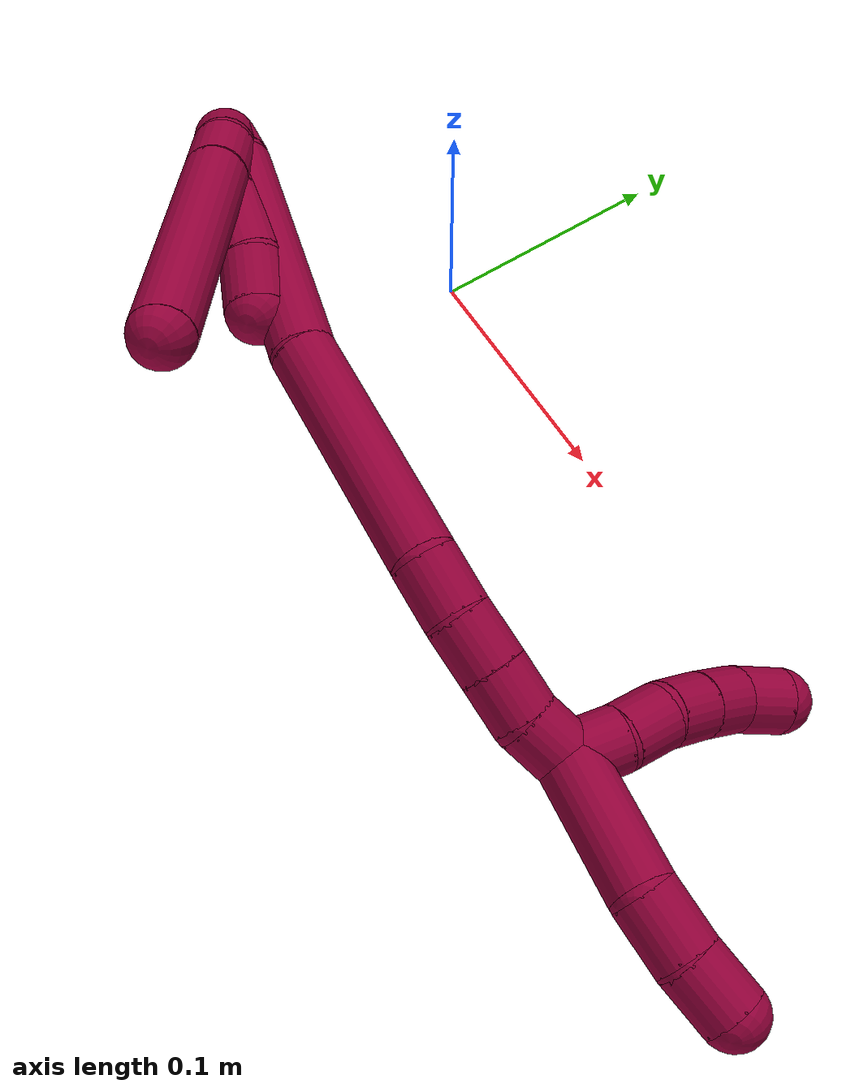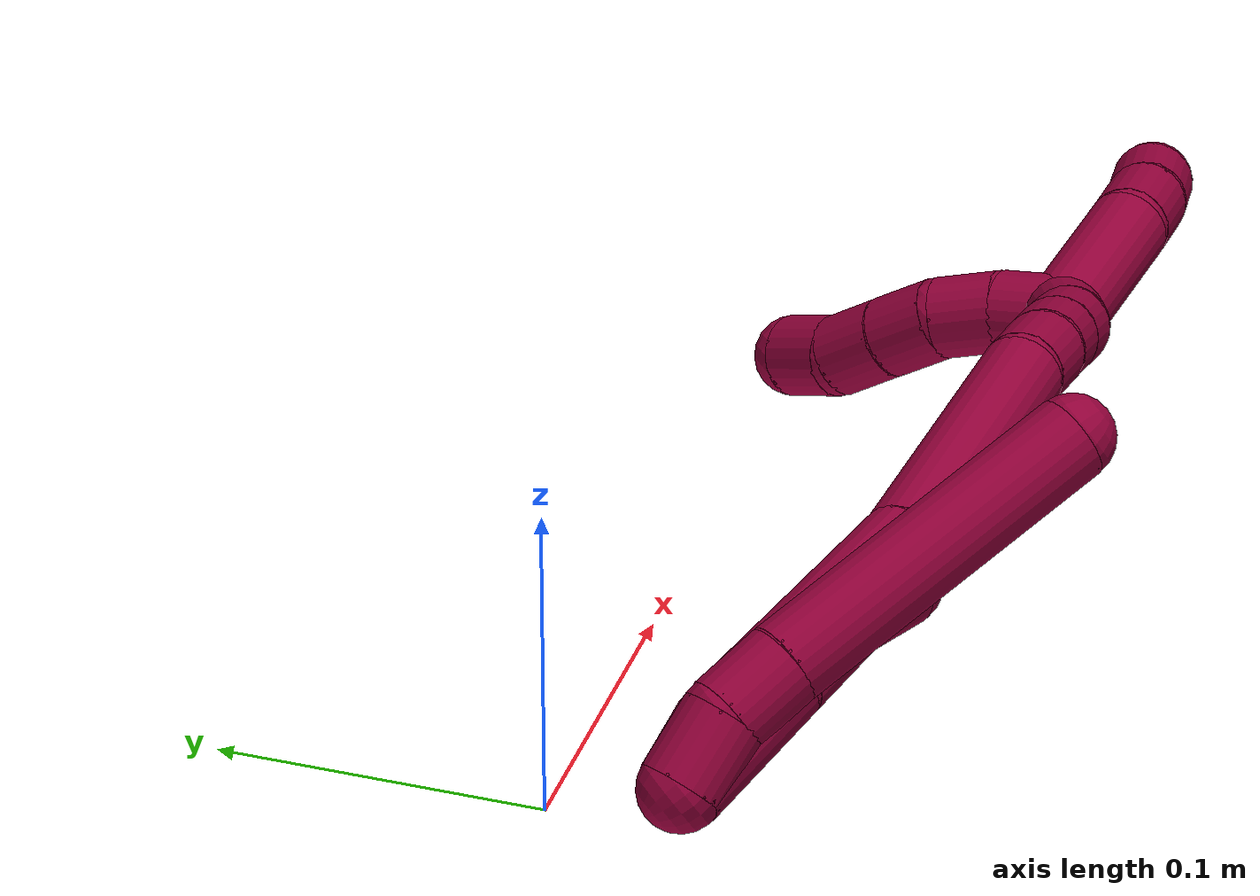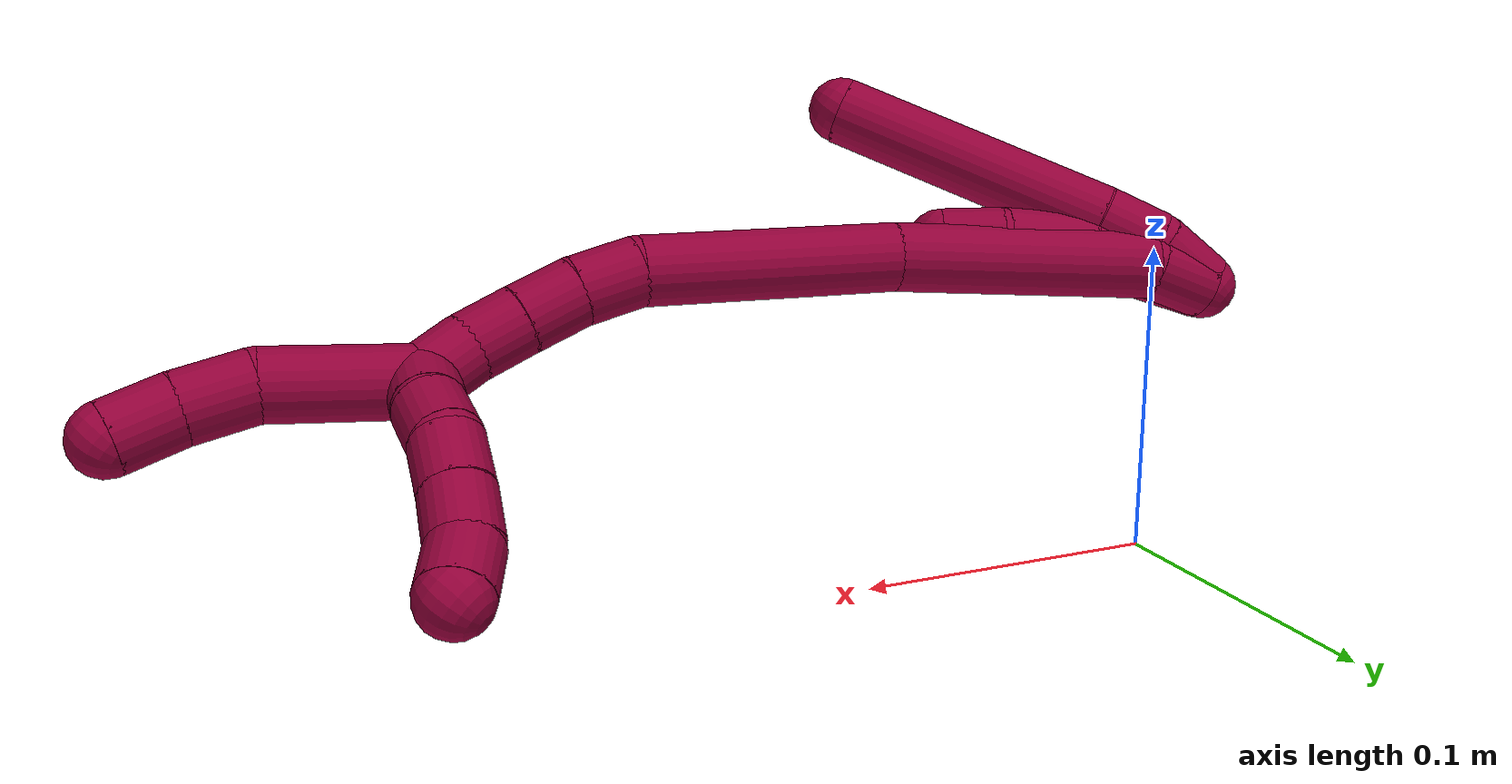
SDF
<sdf version="1.7">
 <world name="default">
  <model name="8">
   <static>0</static>
   <link name="8">
    <collision name="collision-cylinder-e_1_2_8">
     <pose>0.002917 0.002862 0.010736 -0.260557 0.256756 -0.033823</pose>
     <geometry><cylinder><radius>0.0125</radius><length>0.022975</length></cylinder></geometry>
     <surface>
      <friction><ode><mu>1.16</mu><mu2>1.16</mu2><slip1>0</slip1><slip2>0</slip2></ode></friction>
      <contact><ode><kp>1e+06</kp><kd>1</kd><max_vel>0</max_vel><min_depth>0.001</min_depth></ode></contact>
     </surface>
    </collision>
    <visual name="visual-cylinder-e_1_2_8">
     <pose>0.002917 0.002862 0.010736 -0.260557 0.256756 -0.033823</pose>
     <geometry><cylinder><radius>0.0125</radius><length>0.022975</length></cylinder></geometry>
     <material><ambient>0.584314 0 0.227451 1</ambient></material>
    </visual>
    <collision name="collision-cylinder-e_2_8_9">
     <pose>0.008436 0.005027 0.032216 0.064844 0.237075 0.007725</pose>
     <geometry><cylinder><radius>0.0125</radius><length>0.022152</length></cylinder></geometry>
     <surface>
      <friction><ode><mu>1.16</mu><mu2>1.16</mu2><slip1>0</slip1><slip2>0</slip2></ode></friction>
      <contact><ode><kp>1e+06</kp><kd>1</kd><max_vel>0</max_vel><min_depth>0.001</min_depth></ode></contact>
     </surface>
    </collision>
    <visual name="visual-cylinder-e_2_8_9">
     <pose>0.008436 0.005027 0.032216 0.064844 0.237075 0.007725</pose>
     <geometry><cylinder><radius>0.0125</radius><length>0.022152</length></cylinder></geometry>
     <material><ambient>0.584314 0 0.227451 1</ambient></material>
    </visual>
    <collision name="collision-cylinder-e_3_9_6">
     <pose>0.022814 -0.002347 0.093618 0.131036 0.226526 0.014926</pose>
     <geometry><cylinder><radius>0.0125</radius><length>0.104872</length></cylinder></geometry>
     <surface>
      <friction><ode><mu>1.16</mu><mu2>1.16</mu2><slip1>0</slip1><slip2>0</slip2></ode></friction>
      <contact><ode><kp>1e+06</kp><kd>1</kd><max_vel>0</max_vel><min_depth>0.001</min_depth></ode></contact>
     </surface>
    </collision>
    <visual name="visual-cylinder-e_3_9_6">
     <pose>0.022814 -0.002347 0.093618 0.131036 0.226526 0.014926</pose>
     <geometry><cylinder><radius>0.0125</radius><length>0.104872</length></cylinder></geometry>
     <material><ambient>0.584314 0 0.227451 1</ambient></material>
    </visual>
    <collision name="collision-cylinder-e_1_2_10">
     <pose>0.009775 -0.00209 0.020065 0.103785 0.451218 0.023841</pose>
     <geometry><cylinder><radius>0.0125</radius><length>0.044835</length></cylinder></geometry>
     <surface>
      <friction><ode><mu>1.16</mu><mu2>1.16</mu2><slip1>0</slip1><slip2>0</slip2></ode></friction>
      <contact><ode><kp>1e+06</kp><kd>1</kd><max_vel>0</max_vel><min_depth>0.001</min_depth></ode></contact>
     </surface>
    </collision>
    <visual name="visual-cylinder-e_1_2_10">
     <pose>0.009775 -0.00209 0.020065 0.103785 0.451218 0.023841</pose>
     <geometry><cylinder><radius>0.0125</radius><length>0.044835</length></cylinder></geometry>
     <material><ambient>0.584314 0 0.227451 1</ambient></material>
    </visual>
    <collision name="collision-cylinder-e_2_10_11">
     <pose>0.02954 -0.007684 0.052535 0.275326 0.659291 0.094726</pose>
     <geometry><cylinder><radius>0.0125</radius><length>0.032616</length></cylinder></geometry>
     <surface>
      <friction><ode><mu>1.16</mu><mu2>1.16</mu2><slip1>0</slip1><slip2>0</slip2></ode></friction>
      <contact><ode><kp>1e+06</kp><kd>1</kd><max_vel>0</max_vel><min_depth>0.001</min_depth></ode></contact>
     </surface>
    </collision>
    <visual name="visual-cylinder-e_2_10_11">
     <pose>0.02954 -0.007684 0.052535 0.275326 0.659291 0.094726</pose>
     <geometry><cylinder><radius>0.0125</radius><length>0.032616</length></cylinder></geometry>
     <material><ambient>0.584314 0 0.227451 1</ambient></material>
    </visual>
    <collision name="collision-cylinder-e_3_11_5">
     <pose>0.045293 -0.015683 0.073525 0.482273 0.536553 0.135004</pose>
     <geometry><cylinder><radius>0.0125</radius><length>0.02255</length></cylinder></geometry>
     <surface>
      <friction><ode><mu>1.16</mu><mu2>1.16</mu2><slip1>0</slip1><slip2>0</slip2></ode></friction>
      <contact><ode><kp>1e+06</kp><kd>1</kd><max_vel>0</max_vel><min_depth>0.001</min_depth></ode></contact>
     </surface>
    </collision>
    <visual name="visual-cylinder-e_3_11_5">
     <pose>0.045293 -0.015683 0.073525 0.482273 0.536553 0.135004</pose>
     <geometry><cylinder><radius>0.0125</radius><length>0.02255</length></cylinder></geometry>
     <material><ambient>0.584314 0 0.227451 1</ambient></material>
    </visual>
    <collision name="collision-cylinder-e_1_2_12">
     <pose>0.006335 0.00068 0.00931 -0.072872 0.596263 -0.022402</pose>
     <geometry><cylinder><radius>0.0125</radius><length>0.022562</length></cylinder></geometry>
     <surface>
      <friction><ode><mu>1.16</mu><mu2>1.16</mu2><slip1>0</slip1><slip2>0</slip2></ode></friction>
      <contact><ode><kp>1e+06</kp><kd>1</kd><max_vel>0</max_vel><min_depth>0.001</min_depth></ode></contact>
     </surface>
    </collision>
    <visual name="visual-cylinder-e_1_2_12">
     <pose>0.006335 0.00068 0.00931 -0.072872 0.596263 -0.022402</pose>
     <geometry><cylinder><radius>0.0125</radius><length>0.022562</length></cylinder></geometry>
     <material><ambient>0.584314 0 0.227451 1</ambient></material>
    </visual>
    <collision name="collision-cylinder-e_2_12_13">
     <pose>0.043053 -0.010887 0.054366 0.330047 0.677226 0.117167</pose>
     <geometry><cylinder><radius>0.0125</radius><length>0.096974</length></cylinder></geometry>
     <surface>
      <friction><ode><mu>1.16</mu><mu2>1.16</mu2><slip1>0</slip1><slip2>0</slip2></ode></friction>
      <contact><ode><kp>1e+06</kp><kd>1</kd><max_vel>0</max_vel><min_depth>0.001</min_depth></ode></contact>
     </surface>
    </collision>
    <visual name="visual-cylinder-e_2_12_13">
     <pose>0.043053 -0.010887 0.054366 0.330047 0.677226 0.117167</pose>
     <geometry><cylinder><radius>0.0125</radius><length>0.096974</length></cylinder></geometry>
     <material><ambient>0.584314 0 0.227451 1</ambient></material>
    </visual>
    <collision name="collision-cylinder-e_3_13_14">
     <pose>0.109687 -0.032881 0.119592 0.319364 0.862539 0.147949</pose>
     <geometry><cylinder><radius>0.0125</radius><length>0.095458</length></cylinder></geometry>
     <surface>
      <friction><ode><mu>1.16</mu><mu2>1.16</mu2><slip1>0</slip1><slip2>0</slip2></ode></friction>
      <contact><ode><kp>1e+06</kp><kd>1</kd><max_vel>0</max_vel><min_depth>0.001</min_depth></ode></contact>
     </surface>
    </collision>
    <visual name="visual-cylinder-e_3_13_14">
     <pose>0.109687 -0.032881 0.119592 0.319364 0.862539 0.147949</pose>
     <geometry><cylinder><radius>0.0125</radius><length>0.095458</length></cylinder></geometry>
     <material><ambient>0.584314 0 0.227451 1</ambient></material>
    </visual>
    <collision name="collision-cylinder-e_4_14_15">
     <pose>0.155384 -0.046888 0.154064 0.70619 0.963601 0.380752</pose>
     <geometry><cylinder><radius>0.0125</radius><length>0.023007</length></cylinder></geometry>
     <surface>
      <friction><ode><mu>1.16</mu><mu2>1.16</mu2><slip1>0</slip1><slip2>0</slip2></ode></friction>
      <contact><ode><kp>1e+06</kp><kd>1</kd><max_vel>0</max_vel><min_depth>0.001</min_depth></ode></contact>
     </surface>
    </collision>
    <visual name="visual-cylinder-e_4_14_15">
     <pose>0.155384 -0.046888 0.154064 0.70619 0.963601 0.380752</pose>
     <geometry><cylinder><radius>0.0125</radius><length>0.023007</length></cylinder></geometry>
     <material><ambient>0.584314 0 0.227451 1</ambient></material>
    </visual>
    <collision name="collision-cylinder-e_5_15_16">
     <pose>0.174154 -0.055677 0.162285 0.95174 1.03286 0.569394</pose>
     <geometry><cylinder><radius>0.0125</radius><length>0.02171</length></cylinder></geometry>
     <surface>
      <friction><ode><mu>1.16</mu><mu2>1.16</mu2><slip1>0</slip1><slip2>0</slip2></ode></friction>
      <contact><ode><kp>1e+06</kp><kd>1</kd><max_vel>0</max_vel><min_depth>0.001</min_depth></ode></contact>
     </surface>
    </collision>
    <visual name="visual-cylinder-e_5_15_16">
     <pose>0.174154 -0.055677 0.162285 0.95174 1.03286 0.569394</pose>
     <geometry><cylinder><radius>0.0125</radius><length>0.02171</length></cylinder></geometry>
     <material><ambient>0.584314 0 0.227451 1</ambient></material>
    </visual>
    <collision name="collision-cylinder-e_6_16_17">
     <pose>0.192074 -0.064634 0.168361 0.99897 1.0214 0.593369</pose>
     <geometry><cylinder><radius>0.0125</radius><length>0.020163</length></cylinder></geometry>
     <surface>
      <friction><ode><mu>1.16</mu><mu2>1.16</mu2><slip1>0</slip1><slip2>0</slip2></ode></friction>
      <contact><ode><kp>1e+06</kp><kd>1</kd><max_vel>0</max_vel><min_depth>0.001</min_depth></ode></contact>
     </surface>
    </collision>
    <visual name="visual-cylinder-e_6_16_17">
     <pose>0.192074 -0.064634 0.168361 0.99897 1.0214 0.593369</pose>
     <geometry><cylinder><radius>0.0125</radius><length>0.020163</length></cylinder></geometry>
     <material><ambient>0.584314 0 0.227451 1</ambient></material>
    </visual>
    <collision name="collision-cylinder-e_7_17_1">
     <pose>0.210235 -0.072093 0.171992 1.31842 1.25438 1.02344</pose>
     <geometry><cylinder><radius>0.0125</radius><length>0.020125</length></cylinder></geometry>
     <surface>
      <friction><ode><mu>1.16</mu><mu2>1.16</mu2><slip1>0</slip1><slip2>0</slip2></ode></friction>
      <contact><ode><kp>1e+06</kp><kd>1</kd><max_vel>0</max_vel><min_depth>0.001</min_depth></ode></contact>
     </surface>
    </collision>
    <visual name="visual-cylinder-e_7_17_1">
     <pose>0.210235 -0.072093 0.171992 1.31842 1.25438 1.02344</pose>
     <geometry><cylinder><radius>0.0125</radius><length>0.020125</length></cylinder></geometry>
     <material><ambient>0.584314 0 0.227451 1</ambient></material>
    </visual>
    <collision name="collision-cylinder-e_1_1_18">
     <pose>0.23871 -0.080087 0.190028 0.280037 0.811386 0.120926</pose>
     <geometry><cylinder><radius>0.0125</radius><length>0.052155</length></cylinder></geometry>
     <surface>
      <friction><ode><mu>1.16</mu><mu2>1.16</mu2><slip1>0</slip1><slip2>0</slip2></ode></friction>
      <contact><ode><kp>1e+06</kp><kd>1</kd><max_vel>0</max_vel><min_depth>0.001</min_depth></ode></contact>
     </surface>
    </collision>
    <visual name="visual-cylinder-e_1_1_18">
     <pose>0.23871 -0.080087 0.190028 0.280037 0.811386 0.120926</pose>
     <geometry><cylinder><radius>0.0125</radius><length>0.052155</length></cylinder></geometry>
     <material><ambient>0.584314 0 0.227451 1</ambient></material>
    </visual>
    <collision name="collision-cylinder-e_2_18_19">
     <pose>0.268253 -0.088952 0.212636 0.629974 1.01355 0.357894</pose>
     <geometry><cylinder><radius>0.0125</radius><length>0.025051</length></cylinder></geometry>
     <surface>
      <friction><ode><mu>1.16</mu><mu2>1.16</mu2><slip1>0</slip1><slip2>0</slip2></ode></friction>
      <contact><ode><kp>1e+06</kp><kd>1</kd><max_vel>0</max_vel><min_depth>0.001</min_depth></ode></contact>
     </surface>
    </collision>
    <visual name="visual-cylinder-e_2_18_19">
     <pose>0.268253 -0.088952 0.212636 0.629974 1.01355 0.357894</pose>
     <geometry><cylinder><radius>0.0125</radius><length>0.025051</length></cylinder></geometry>
     <material><ambient>0.584314 0 0.227451 1</ambient></material>
    </visual>
    <collision name="collision-cylinder-e_3_19_4">
     <pose>0.289215 -0.096276 0.221374 0.790598 1.13477 0.5198</pose>
     <geometry><cylinder><radius>0.0125</radius><length>0.022794</length></cylinder></geometry>
     <surface>
      <friction><ode><mu>1.16</mu><mu2>1.16</mu2><slip1>0</slip1><slip2>0</slip2></ode></friction>
      <contact><ode><kp>1e+06</kp><kd>1</kd><max_vel>0</max_vel><min_depth>0.001</min_depth></ode></contact>
     </surface>
    </collision>
    <visual name="visual-cylinder-e_3_19_4">
     <pose>0.289215 -0.096276 0.221374 0.790598 1.13477 0.5198</pose>
     <geometry><cylinder><radius>0.0125</radius><length>0.022794</length></cylinder></geometry>
     <material><ambient>0.584314 0 0.227451 1</ambient></material>
    </visual>
    <collision name="collision-cylinder-e_1_1_20">
     <pose>0.226614 -0.071664 0.166326 -2.64905 0.749911 -2.00481</pose>
     <geometry><cylinder><radius>0.0125</radius><length>0.02</length></cylinder></geometry>
     <surface>
      <friction><ode><mu>1.16</mu><mu2>1.16</mu2><slip1>0</slip1><slip2>0</slip2></ode></friction>
      <contact><ode><kp>1e+06</kp><kd>1</kd><max_vel>0</max_vel><min_depth>0.001</min_depth></ode></contact>
     </surface>
    </collision>
    <visual name="visual-cylinder-e_1_1_20">
     <pose>0.226614 -0.071664 0.166326 -2.64905 0.749911 -2.00481</pose>
     <geometry><cylinder><radius>0.0125</radius><length>0.02</length></cylinder></geometry>
     <material><ambient>0.584314 0 0.227451 1</ambient></material>
    </visual>
    <collision name="collision-cylinder-e_2_20_21">
     <pose>0.239143 -0.065538 0.152117 -2.81067 0.608199 -2.16362</pose>
     <geometry><cylinder><radius>0.0125</radius><length>0.02</length></cylinder></geometry>
     <surface>
      <friction><ode><mu>1.16</mu><mu2>1.16</mu2><slip1>0</slip1><slip2>0</slip2></ode></friction>
      <contact><ode><kp>1e+06</kp><kd>1</kd><max_vel>0</max_vel><min_depth>0.001</min_depth></ode></contact>
     </surface>
    </collision>
    <visual name="visual-cylinder-e_2_20_21">
     <pose>0.239143 -0.065538 0.152117 -2.81067 0.608199 -2.16362</pose>
     <geometry><cylinder><radius>0.0125</radius><length>0.02</length></cylinder></geometry>
     <material><ambient>0.584314 0 0.227451 1</ambient></material>
    </visual>
    <collision name="collision-cylinder-e_3_21_22">
     <pose>0.251088 -0.06307 0.136536 3.11618 0.672638 3.06894</pose>
     <geometry><cylinder><radius>0.0125</radius><length>0.02</length></cylinder></geometry>
     <surface>
      <friction><ode><mu>1.16</mu><mu2>1.16</mu2><slip1>0</slip1><slip2>0</slip2></ode></friction>
      <contact><ode><kp>1e+06</kp><kd>1</kd><max_vel>0</max_vel><min_depth>0.001</min_depth></ode></contact>
     </surface>
    </collision>
    <visual name="visual-cylinder-e_3_21_22">
     <pose>0.251088 -0.06307 0.136536 3.11618 0.672638 3.06894</pose>
     <geometry><cylinder><radius>0.0125</radius><length>0.02</length></cylinder></geometry>
     <material><ambient>0.584314 0 0.227451 1</ambient></material>
    </visual>
    <collision name="collision-cylinder-e_4_22_23">
     <pose>0.263869 -0.063821 0.121181 3.06838 0.714281 2.94593</pose>
     <geometry><cylinder><radius>0.0125</radius><length>0.02</length></cylinder></geometry>
     <surface>
      <friction><ode><mu>1.16</mu><mu2>1.16</mu2><slip1>0</slip1><slip2>0</slip2></ode></friction>
      <contact><ode><kp>1e+06</kp><kd>1</kd><max_vel>0</max_vel><min_depth>0.001</min_depth></ode></contact>
     </surface>
    </collision>
    <visual name="visual-cylinder-e_4_22_23">
     <pose>0.263869 -0.063821 0.121181 3.06838 0.714281 2.94593</pose>
     <geometry><cylinder><radius>0.0125</radius><length>0.02</length></cylinder></geometry>
     <material><ambient>0.584314 0 0.227451 1</ambient></material>
    </visual>
    <collision name="collision-cylinder-e_5_23_3">
     <pose>0.278969 -0.063881 0.108482 -3.04644 1.0254 -2.97283</pose>
     <geometry><cylinder><radius>0.0125</radius><length>0.02</length></cylinder></geometry>
     <surface>
      <friction><ode><mu>1.16</mu><mu2>1.16</mu2><slip1>0</slip1><slip2>0</slip2></ode></friction>
      <contact><ode><kp>1e+06</kp><kd>1</kd><max_vel>0</max_vel><min_depth>0.001</min_depth></ode></contact>
     </surface>
    </collision>
    <visual name="visual-cylinder-e_5_23_3">
     <pose>0.278969 -0.063881 0.108482 -3.04644 1.0254 -2.97283</pose>
     <geometry><cylinder><radius>0.0125</radius><length>0.02</length></cylinder></geometry>
     <material><ambient>0.584314 0 0.227451 1</ambient></material>
    </visual>
    <collision name="collision-sphere-3">
     <pose>0.287518 -0.063388 0.103318 0 -0 0</pose>
     <geometry><sphere><radius>0.0125</radius></sphere></geometry>
     <surface>
      <friction><ode><mu>1.16</mu><mu2>1.16</mu2><slip1>0</slip1><slip2>0</slip2></ode></friction>
      <contact><ode><kp>1e+06</kp><kd>1</kd><max_vel>0</max_vel><min_depth>0.001</min_depth></ode></contact>
     </surface>
    </collision>
    <visual name="visual-sphere-3">
     <pose>0.287518 -0.063388 0.103318 0 -0 0</pose>
     <geometry><sphere><radius>0.0125</radius></sphere></geometry>
     <material><ambient>0.584314 0 0.227451 1</ambient></material>
    </visual>
    <collision name="collision-sphere-23">
     <pose>0.27042 -0.064374 0.113646 0 -0 0</pose>
     <geometry><sphere><radius>0.0125</radius></sphere></geometry>
     <surface>
      <friction><ode><mu>1.16</mu><mu2>1.16</mu2><slip1>0</slip1><slip2>0</slip2></ode></friction>
      <contact><ode><kp>1e+06</kp><kd>1</kd><max_vel>0</max_vel><min_depth>0.001</min_depth></ode></contact>
     </surface>
    </collision>
    <visual name="visual-sphere-23">
     <pose>0.27042 -0.064374 0.113646 0 -0 0</pose>
     <geometry><sphere><radius>0.0125</radius></sphere></geometry>
     <material><ambient>0.584314 0 0.227451 1</ambient></material>
    </visual>
    <collision name="collision-sphere-22">
     <pose>0.257318 -0.063269 0.128717 0 -0 0</pose>
     <geometry><sphere><radius>0.0125</radius></sphere></geometry>
     <surface>
      <friction><ode><mu>1.16</mu><mu2>1.16</mu2><slip1>0</slip1><slip2>0</slip2></ode></friction>
      <contact><ode><kp>1e+06</kp><kd>1</kd><max_vel>0</max_vel><min_depth>0.001</min_depth></ode></contact>
     </surface>
    </collision>
    <visual name="visual-sphere-22">
     <pose>0.257318 -0.063269 0.128717 0 -0 0</pose>
     <geometry><sphere><radius>0.0125</radius></sphere></geometry>
     <material><ambient>0.584314 0 0.227451 1</ambient></material>
    </visual>
    <collision name="collision-sphere-21">
     <pose>0.244857 -0.062871 0.144355 0 -0 0</pose>
     <geometry><sphere><radius>0.0125</radius></sphere></geometry>
     <surface>
      <friction><ode><mu>1.16</mu><mu2>1.16</mu2><slip1>0</slip1><slip2>0</slip2></ode></friction>
      <contact><ode><kp>1e+06</kp><kd>1</kd><max_vel>0</max_vel><min_depth>0.001</min_depth></ode></contact>
     </surface>
    </collision>
    <visual name="visual-sphere-21">
     <pose>0.244857 -0.062871 0.144355 0 -0 0</pose>
     <geometry><sphere><radius>0.0125</radius></sphere></geometry>
     <material><ambient>0.584314 0 0.227451 1</ambient></material>
    </visual>
    <collision name="collision-sphere-20">
     <pose>0.23343 -0.068204 0.159878 0 -0 0</pose>
     <geometry><sphere><radius>0.0125</radius></sphere></geometry>
     <surface>
      <friction><ode><mu>1.16</mu><mu2>1.16</mu2><slip1>0</slip1><slip2>0</slip2></ode></friction>
      <contact><ode><kp>1e+06</kp><kd>1</kd><max_vel>0</max_vel><min_depth>0.001</min_depth></ode></contact>
     </surface>
    </collision>
    <visual name="visual-sphere-20">
     <pose>0.23343 -0.068204 0.159878 0 -0 0</pose>
     <geometry><sphere><radius>0.0125</radius></sphere></geometry>
     <material><ambient>0.584314 0 0.227451 1</ambient></material>
    </visual>
    <collision name="collision-sphere-4">
     <pose>0.299546 -0.099697 0.22476 0 -0 0</pose>
     <geometry><sphere><radius>0.0125</radius></sphere></geometry>
     <surface>
      <friction><ode><mu>1.16</mu><mu2>1.16</mu2><slip1>0</slip1><slip2>0</slip2></ode></friction>
      <contact><ode><kp>1e+06</kp><kd>1</kd><max_vel>0</max_vel><min_depth>0.001</min_depth></ode></contact>
     </surface>
    </collision>
    <visual name="visual-sphere-4">
     <pose>0.299546 -0.099697 0.22476 0 -0 0</pose>
     <geometry><sphere><radius>0.0125</radius></sphere></geometry>
     <material><ambient>0.584314 0 0.227451 1</ambient></material>
    </visual>
    <collision name="collision-sphere-11">
     <pose>0.03953 -0.011189 0.06494 0 -0 0</pose>
     <geometry><sphere><radius>0.0125</radius></sphere></geometry>
     <surface>
      <friction><ode><mu>1.16</mu><mu2>1.16</mu2><slip1>0</slip1><slip2>0</slip2></ode></friction>
      <contact><ode><kp>1e+06</kp><kd>1</kd><max_vel>0</max_vel><min_depth>0.001</min_depth></ode></contact>
     </surface>
    </collision>
    <visual name="visual-sphere-11">
     <pose>0.03953 -0.011189 0.06494 0 -0 0</pose>
     <geometry><sphere><radius>0.0125</radius></sphere></geometry>
     <material><ambient>0.584314 0 0.227451 1</ambient></material>
    </visual>
    <collision name="collision-sphere-10">
     <pose>0.019551 -0.00418 0.04013 0 -0 0</pose>
     <geometry><sphere><radius>0.0125</radius></sphere></geometry>
     <surface>
      <friction><ode><mu>1.16</mu><mu2>1.16</mu2><slip1>0</slip1><slip2>0</slip2></ode></friction>
      <contact><ode><kp>1e+06</kp><kd>1</kd><max_vel>0</max_vel><min_depth>0.001</min_depth></ode></contact>
     </surface>
    </collision>
    <visual name="visual-sphere-10">
     <pose>0.019551 -0.00418 0.04013 0 -0 0</pose>
     <geometry><sphere><radius>0.0125</radius></sphere></geometry>
     <material><ambient>0.584314 0 0.227451 1</ambient></material>
    </visual>
    <collision name="collision-sphere-6">
     <pose>0.034591 -0.009023 0.144277 0 -0 0</pose>
     <geometry><sphere><radius>0.0125</radius></sphere></geometry>
     <surface>
      <friction><ode><mu>1.16</mu><mu2>1.16</mu2><slip1>0</slip1><slip2>0</slip2></ode></friction>
      <contact><ode><kp>1e+06</kp><kd>1</kd><max_vel>0</max_vel><min_depth>0.001</min_depth></ode></contact>
     </surface>
    </collision>
    <visual name="visual-sphere-6">
     <pose>0.034591 -0.009023 0.144277 0 -0 0</pose>
     <geometry><sphere><radius>0.0125</radius></sphere></geometry>
     <material><ambient>0.584314 0 0.227451 1</ambient></material>
    </visual>
    <collision name="collision-sphere-9">
     <pose>0.011037 0.00433 0.042959 0 -0 0</pose>
     <geometry><sphere><radius>0.0125</radius></sphere></geometry>
     <surface>
      <friction><ode><mu>1.16</mu><mu2>1.16</mu2><slip1>0</slip1><slip2>0</slip2></ode></friction>
      <contact><ode><kp>1e+06</kp><kd>1</kd><max_vel>0</max_vel><min_depth>0.001</min_depth></ode></contact>
     </surface>
    </collision>
    <visual name="visual-sphere-9">
     <pose>0.011037 0.00433 0.042959 0 -0 0</pose>
     <geometry><sphere><radius>0.0125</radius></sphere></geometry>
     <material><ambient>0.584314 0 0.227451 1</ambient></material>
    </visual>
    <collision name="collision-sphere-2">
     <geometry><sphere><radius>0.0125</radius></sphere></geometry>
     <surface>
      <friction><ode><mu>1.16</mu><mu2>1.16</mu2><slip1>0</slip1><slip2>0</slip2></ode></friction>
      <contact><ode><kp>1e+06</kp><kd>1</kd><max_vel>0</max_vel><min_depth>0.001</min_depth></ode></contact>
     </surface>
    </collision>
    <visual name="visual-sphere-2">
     <geometry><sphere><radius>0.0125</radius></sphere></geometry>
     <material><ambient>0.584314 0 0.227451 1</ambient></material>
    </visual>
    <collision name="collision-sphere-19">
     <pose>0.278884 -0.092854 0.217988 0 -0 0</pose>
     <geometry><sphere><radius>0.0125</radius></sphere></geometry>
     <surface>
      <friction><ode><mu>1.16</mu><mu2>1.16</mu2><slip1>0</slip1><slip2>0</slip2></ode></friction>
      <contact><ode><kp>1e+06</kp><kd>1</kd><max_vel>0</max_vel><min_depth>0.001</min_depth></ode></contact>
     </surface>
    </collision>
    <visual name="visual-sphere-19">
     <pose>0.278884 -0.092854 0.217988 0 -0 0</pose>
     <geometry><sphere><radius>0.0125</radius></sphere></geometry>
     <material><ambient>0.584314 0 0.227451 1</ambient></material>
    </visual>
    <collision name="collision-sphere-8">
     <pose>0.005834 0.005725 0.021472 0 -0 0</pose>
     <geometry><sphere><radius>0.0125</radius></sphere></geometry>
     <surface>
      <friction><ode><mu>1.16</mu><mu2>1.16</mu2><slip1>0</slip1><slip2>0</slip2></ode></friction>
      <contact><ode><kp>1e+06</kp><kd>1</kd><max_vel>0</max_vel><min_depth>0.001</min_depth></ode></contact>
     </surface>
    </collision>
    <visual name="visual-sphere-8">
     <pose>0.005834 0.005725 0.021472 0 -0 0</pose>
     <geometry><sphere><radius>0.0125</radius></sphere></geometry>
     <material><ambient>0.584314 0 0.227451 1</ambient></material>
    </visual>
    <collision name="collision-sphere-5">
     <pose>0.051056 -0.020177 0.08211 0 -0 0</pose>
     <geometry><sphere><radius>0.0125</radius></sphere></geometry>
     <surface>
      <friction><ode><mu>1.16</mu><mu2>1.16</mu2><slip1>0</slip1><slip2>0</slip2></ode></friction>
      <contact><ode><kp>1e+06</kp><kd>1</kd><max_vel>0</max_vel><min_depth>0.001</min_depth></ode></contact>
     </surface>
    </collision>
    <visual name="visual-sphere-5">
     <pose>0.051056 -0.020177 0.08211 0 -0 0</pose>
     <geometry><sphere><radius>0.0125</radius></sphere></geometry>
     <material><ambient>0.584314 0 0.227451 1</ambient></material>
    </visual>
    <collision name="collision-sphere-12">
     <pose>0.01267 0.001359 0.018619 0 -0 0</pose>
     <geometry><sphere><radius>0.0125</radius></sphere></geometry>
     <surface>
      <friction><ode><mu>1.16</mu><mu2>1.16</mu2><slip1>0</slip1><slip2>0</slip2></ode></friction>
      <contact><ode><kp>1e+06</kp><kd>1</kd><max_vel>0</max_vel><min_depth>0.001</min_depth></ode></contact>
     </surface>
    </collision>
    <visual name="visual-sphere-12">
     <pose>0.01267 0.001359 0.018619 0 -0 0</pose>
     <geometry><sphere><radius>0.0125</radius></sphere></geometry>
     <material><ambient>0.584314 0 0.227451 1</ambient></material>
    </visual>
    <collision name="collision-sphere-13">
     <pose>0.073437 -0.023133 0.090113 0 -0 0</pose>
     <geometry><sphere><radius>0.0125</radius></sphere></geometry>
     <surface>
      <friction><ode><mu>1.16</mu><mu2>1.16</mu2><slip1>0</slip1><slip2>0</slip2></ode></friction>
      <contact><ode><kp>1e+06</kp><kd>1</kd><max_vel>0</max_vel><min_depth>0.001</min_depth></ode></contact>
     </surface>
    </collision>
    <visual name="visual-sphere-13">
     <pose>0.073437 -0.023133 0.090113 0 -0 0</pose>
     <geometry><sphere><radius>0.0125</radius></sphere></geometry>
     <material><ambient>0.584314 0 0.227451 1</ambient></material>
    </visual>
    <collision name="collision-sphere-14">
     <pose>0.145937 -0.042629 0.14907 0 -0 0</pose>
     <geometry><sphere><radius>0.0125</radius></sphere></geometry>
     <surface>
      <friction><ode><mu>1.16</mu><mu2>1.16</mu2><slip1>0</slip1><slip2>0</slip2></ode></friction>
      <contact><ode><kp>1e+06</kp><kd>1</kd><max_vel>0</max_vel><min_depth>0.001</min_depth></ode></contact>
     </surface>
    </collision>
    <visual name="visual-sphere-14">
     <pose>0.145937 -0.042629 0.14907 0 -0 0</pose>
     <geometry><sphere><radius>0.0125</radius></sphere></geometry>
     <material><ambient>0.584314 0 0.227451 1</ambient></material>
    </visual>
    <collision name="collision-sphere-15">
     <pose>0.164832 -0.051148 0.159058 0 -0 0</pose>
     <geometry><sphere><radius>0.0125</radius></sphere></geometry>
     <surface>
      <friction><ode><mu>1.16</mu><mu2>1.16</mu2><slip1>0</slip1><slip2>0</slip2></ode></friction>
      <contact><ode><kp>1e+06</kp><kd>1</kd><max_vel>0</max_vel><min_depth>0.001</min_depth></ode></contact>
     </surface>
    </collision>
    <visual name="visual-sphere-15">
     <pose>0.164832 -0.051148 0.159058 0 -0 0</pose>
     <geometry><sphere><radius>0.0125</radius></sphere></geometry>
     <material><ambient>0.584314 0 0.227451 1</ambient></material>
    </visual>
    <collision name="collision-sphere-16">
     <pose>0.183476 -0.060207 0.165512 0 -0 0</pose>
     <geometry><sphere><radius>0.0125</radius></sphere></geometry>
     <surface>
      <friction><ode><mu>1.16</mu><mu2>1.16</mu2><slip1>0</slip1><slip2>0</slip2></ode></friction>
      <contact><ode><kp>1e+06</kp><kd>1</kd><max_vel>0</max_vel><min_depth>0.001</min_depth></ode></contact>
     </surface>
    </collision>
    <visual name="visual-sphere-16">
     <pose>0.183476 -0.060207 0.165512 0 -0 0</pose>
     <geometry><sphere><radius>0.0125</radius></sphere></geometry>
     <material><ambient>0.584314 0 0.227451 1</ambient></material>
    </visual>
    <collision name="collision-sphere-17">
     <pose>0.200672 -0.069061 0.17121 0 -0 0</pose>
     <geometry><sphere><radius>0.0125</radius></sphere></geometry>
     <surface>
      <friction><ode><mu>1.16</mu><mu2>1.16</mu2><slip1>0</slip1><slip2>0</slip2></ode></friction>
      <contact><ode><kp>1e+06</kp><kd>1</kd><max_vel>0</max_vel><min_depth>0.001</min_depth></ode></contact>
     </surface>
    </collision>
    <visual name="visual-sphere-17">
     <pose>0.200672 -0.069061 0.17121 0 -0 0</pose>
     <geometry><sphere><radius>0.0125</radius></sphere></geometry>
     <material><ambient>0.584314 0 0.227451 1</ambient></material>
    </visual>
    <collision name="collision-sphere-1">
     <pose>0.219798 -0.075125 0.172774 0 -0 0</pose>
     <geometry><sphere><radius>0.0125</radius></sphere></geometry>
     <surface>
      <friction><ode><mu>1.16</mu><mu2>1.16</mu2><slip1>0</slip1><slip2>0</slip2></ode></friction>
      <contact><ode><kp>1e+06</kp><kd>1</kd><max_vel>0</max_vel><min_depth>0.001</min_depth></ode></contact>
     </surface>
    </collision>
    <visual name="visual-sphere-1">
     <pose>0.219798 -0.075125 0.172774 0 -0 0</pose>
     <geometry><sphere><radius>0.0125</radius></sphere></geometry>
     <material><ambient>0.584314 0 0.227451 1</ambient></material>
    </visual>
    <collision name="collision-sphere-18">
     <pose>0.257623 -0.085049 0.207283 0 -0 0</pose>
     <geometry><sphere><radius>0.0125</radius></sphere></geometry>
     <surface>
      <friction><ode><mu>1.16</mu><mu2>1.16</mu2><slip1>0</slip1><slip2>0</slip2></ode></friction>
      <contact><ode><kp>1e+06</kp><kd>1</kd><max_vel>0</max_vel><min_depth>0.001</min_depth></ode></contact>
     </surface>
    </collision>
    <visual name="visual-sphere-18">
     <pose>0.257623 -0.085049 0.207283 0 -0 0</pose>
     <geometry><sphere><radius>0.0125</radius></sphere></geometry>
     <material><ambient>0.584314 0 0.227451 1</ambient></material>
    </visual>
    <inertial>
     <pose>0.115032 -0.033529 0.106464 0 -0 0</pose>
     <mass>0.75</mass>
     <inertia><ixx>0.00029</ixx><ixy>0</ixy><ixz>0</ixz><iyy>0.00031</iyy><iyz>0</iyz><izz>-7.8e-05</izz></inertia>
    </inertial>
   </link>
   <pose>-0.071478 -0.06376 0.069439 1.01193 0.187097 0.601377</pose>
  </model>
 </world>
</sdf>
